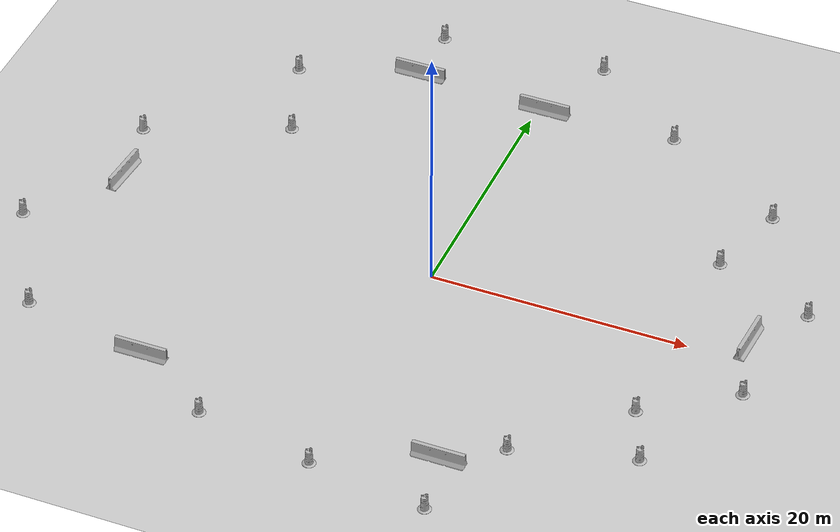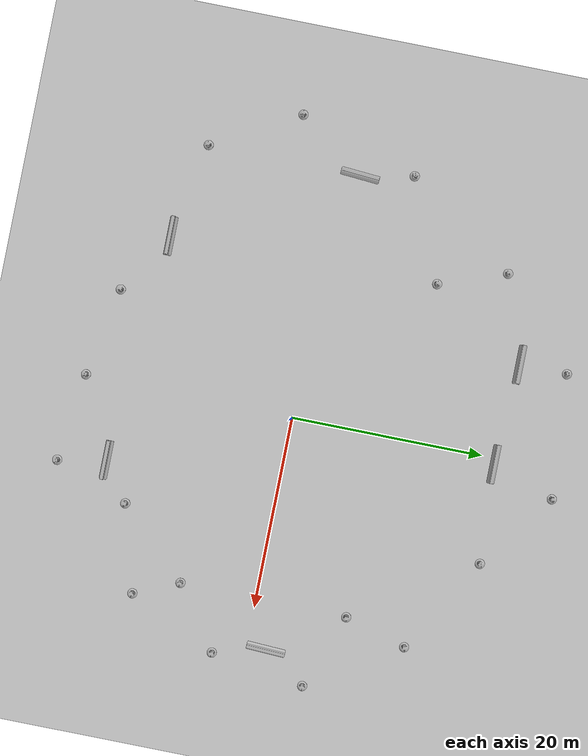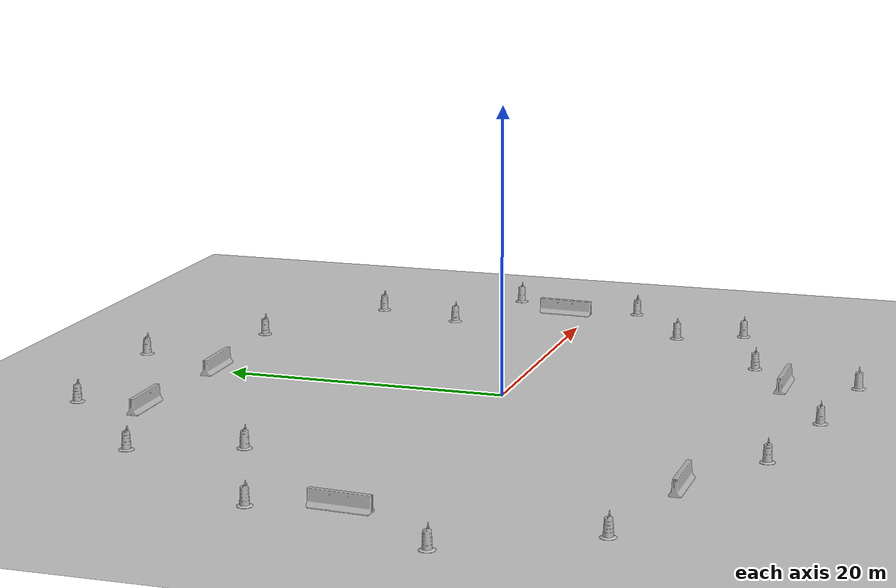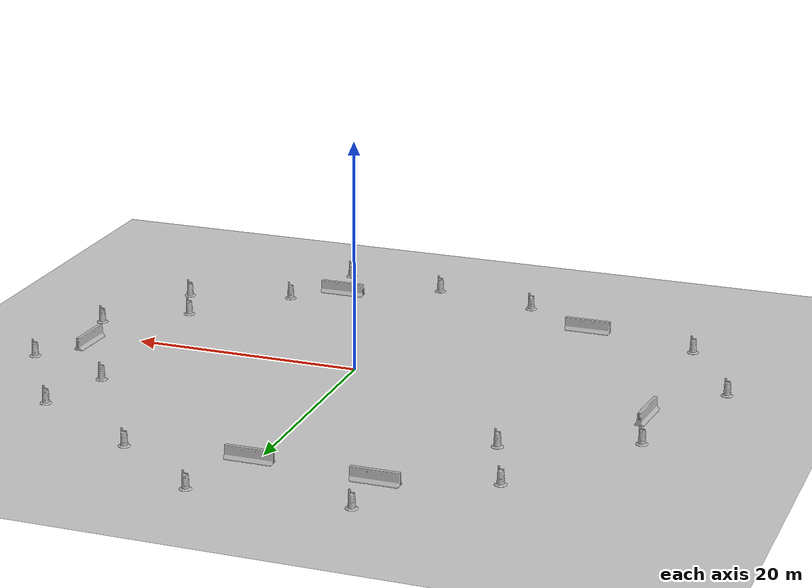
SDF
<sdf version="1.4">
 <world name="default">
  <light name="sun" type="directional">
   <pose>0 0 10 0 -0 0</pose>
   <diffuse>0.8 0.8 0.8 1</diffuse>
   <specular>0.2 0.2 0.2 1</specular>
   <attenuation>
    <range>1000</range>
    <constant>0.9</constant>
    <linear>0.01</linear>
    <quadratic>0.001</quadratic>
   </attenuation>
   <direction>-0.5 0.1 -0.9</direction>
  </light>
  <model name="ground_plane">
   <static>1</static>
   <link name="link">
    <collision name="collision">
     <geometry><plane><normal>0 0 1</normal><size>100 100</size></plane></geometry>
     <surface><friction><ode><mu>100</mu><mu2>50</mu2></ode></friction></surface>
    </collision>
    <visual name="visual">
     <cast_shadows>0</cast_shadows>
     <geometry><plane><normal>0 0 1</normal><size>100 100</size></plane></geometry>
     <material>
      <script><uri>file://media/materials/scripts/gazebo.material</uri><name>Gazebo/Grey</name></script>
     </material>
    </visual>
    <velocity_decay><linear>0</linear><angular>0</angular></velocity_decay>
   </link>
  </model>
  <physics type="ode">
   <max_step_size>0.001</max_step_size>
   <real_time_factor>1</real_time_factor>
   <real_time_update_rate>1000</real_time_update_rate>
   <gravity>0 0 -9.8</gravity>
  </physics>
  <scene><ambient>0.4 0.4 0.4 1</ambient><background>0.7 0.7 0.7 1</background><shadows>1</shadows></scene>
  <spherical_coordinates>
   <surface_model>EARTH_WGS84</surface_model>
   <latitude_deg>0</latitude_deg>
   <longitude_deg>0</longitude_deg>
   <elevation>0</elevation>
   <heading_deg>0</heading_deg>
  </spherical_coordinates>
  <model name="Construction Barrel">
   <link name="link">
    <inertial>
     <pose>0 0 0.4 0 -0 0</pose>
     <mass>500</mass>
     <inertia><ixx>51.2096</ixx><iyy>51.2096</iyy><izz>25</izz><ixy>0</ixy><ixz>0</ixz><iyz>0</iyz></inertia>
    </inertial>
    <collision name="collision">
     <geometry><mesh><uri>model://construction_barrel/meshes/construction_barrel.dae</uri></mesh></geometry>
    </collision>
    <visual name="visual">
     <geometry><mesh><uri>model://construction_barrel/meshes/construction_barrel.dae</uri></mesh></geometry>
    </visual>
    <velocity_decay><linear>0</linear><angular>0</angular></velocity_decay>
   </link>
   <pose>-0.250932 -21.8081 -2e-06 6e-06 2e-06 -0.002034</pose>
   <static>0</static>
  </model>
  <model name="Construction Barrel_0">
   <link name="link">
    <inertial>
     <pose>0 0 0.4 0 -0 0</pose>
     <mass>500</mass>
     <inertia><ixx>51.2096</ixx><iyy>51.2096</iyy><izz>25</izz><ixy>0</ixy><ixz>0</ixz><iyz>0</iyz></inertia>
    </inertial>
    <collision name="collision">
     <geometry><mesh><uri>model://construction_barrel/meshes/construction_barrel.dae</uri></mesh></geometry>
    </collision>
    <visual name="visual">
     <geometry><mesh><uri>model://construction_barrel/meshes/construction_barrel.dae</uri></mesh></geometry>
    </visual>
    <velocity_decay><linear>0</linear><angular>0</angular></velocity_decay>
   </link>
   <pose>12.0469 -15.2088 -3e-06 3e-06 -6e-06 -0.002048</pose>
   <static>0</static>
  </model>
  <model name="Construction Barrel_1">
   <link name="link">
    <inertial>
     <pose>0 0 0.4 0 -0 0</pose>
     <mass>500</mass>
     <inertia><ixx>51.2096</ixx><iyy>51.2096</iyy><izz>25</izz><ixy>0</ixy><ixz>0</ixz><iyz>0</iyz></inertia>
    </inertial>
    <collision name="collision">
     <geometry><mesh><uri>model://construction_barrel/meshes/construction_barrel.dae</uri></mesh></geometry>
    </collision>
    <visual name="visual">
     <geometry><mesh><uri>model://construction_barrel/meshes/construction_barrel.dae</uri></mesh></geometry>
    </visual>
    <velocity_decay><linear>0</linear><angular>0</angular></velocity_decay>
   </link>
   <pose>18.9999 -7.99888 1e-06 -1e-06 -2e-06 -0.002006</pose>
   <static>0</static>
  </model>
  <model name="Construction Barrel_2">
   <link name="link">
    <inertial>
     <pose>0 0 0.4 0 -0 0</pose>
     <mass>500</mass>
     <inertia><ixx>51.2096</ixx><iyy>51.2096</iyy><izz>25</izz><ixy>0</ixy><ixz>0</ixz><iyz>0</iyz></inertia>
    </inertial>
    <collision name="collision">
     <geometry><mesh><uri>model://construction_barrel/meshes/construction_barrel.dae</uri></mesh></geometry>
    </collision>
    <visual name="visual">
     <geometry><mesh><uri>model://construction_barrel/meshes/construction_barrel.dae</uri></mesh></geometry>
    </visual>
    <velocity_decay><linear>0</linear><angular>0</angular></velocity_decay>
   </link>
   <pose>-16.5172 12.0058 -4e-06 2e-06 -7e-06 -0.001926</pose>
   <static>0</static>
  </model>
  <model name="Construction Barrel_3">
   <link name="link">
    <inertial>
     <pose>0 0 0.4 0 -0 0</pose>
     <mass>500</mass>
     <inertia><ixx>51.2096</ixx><iyy>51.2096</iyy><izz>25</izz><ixy>0</ixy><ixz>0</ixz><iyz>0</iyz></inertia>
    </inertial>
    <collision name="collision">
     <geometry><mesh><uri>model://construction_barrel/meshes/construction_barrel.dae</uri></mesh></geometry>
    </collision>
    <visual name="visual">
     <geometry><mesh><uri>model://construction_barrel/meshes/construction_barrel.dae</uri></mesh></geometry>
    </visual>
    <velocity_decay><linear>0</linear><angular>0</angular></velocity_decay>
   </link>
   <pose>19.134 9.52298 -2e-06 -1e-06 -7e-06 -0.001846</pose>
   <static>0</static>
  </model>
  <model name="Construction Barrel_4">
   <link name="link">
    <inertial>
     <pose>0 0 0.4 0 -0 0</pose>
     <mass>500</mass>
     <inertia><ixx>51.2096</ixx><iyy>51.2096</iyy><izz>25</izz><ixy>0</ixy><ixz>0</ixz><iyz>0</iyz></inertia>
    </inertial>
    <collision name="collision">
     <geometry><mesh><uri>model://construction_barrel/meshes/construction_barrel.dae</uri></mesh></geometry>
    </collision>
    <visual name="visual">
     <geometry><mesh><uri>model://construction_barrel/meshes/construction_barrel.dae</uri></mesh></geometry>
    </visual>
    <velocity_decay><linear>0</linear><angular>0</angular></velocity_decay>
   </link>
   <pose>25.4331 -3.40512 -3e-06 3e-06 -6e-06 -0.001732</pose>
   <static>0</static>
  </model>
  <model name="Construction Barrel_5">
   <link name="link">
    <inertial>
     <pose>0 0 0.4 0 -0 0</pose>
     <mass>500</mass>
     <inertia><ixx>51.2096</ixx><iyy>51.2096</iyy><izz>25</izz><ixy>0</ixy><ixz>0</ixz><iyz>0</iyz></inertia>
    </inertial>
    <collision name="collision">
     <geometry><mesh><uri>model://construction_barrel/meshes/construction_barrel.dae</uri></mesh></geometry>
    </collision>
    <visual name="visual">
     <geometry><mesh><uri>model://construction_barrel/meshes/construction_barrel.dae</uri></mesh></geometry>
    </visual>
    <velocity_decay><linear>0</linear><angular>0</angular></velocity_decay>
   </link>
   <pose>-27.0001 7.54625 -3e-06 3e-06 -6e-06 -0.001679</pose>
   <static>0</static>
  </model>
  <model name="Construction Barrel_6">
   <link name="link">
    <inertial>
     <pose>0 0 0.4 0 -0 0</pose>
     <mass>500</mass>
     <inertia><ixx>51.2096</ixx><iyy>51.2096</iyy><izz>25</izz><ixy>0</ixy><ixz>0</ixz><iyz>0</iyz></inertia>
    </inertial>
    <collision name="collision">
     <geometry><mesh><uri>model://construction_barrel/meshes/construction_barrel.dae</uri></mesh></geometry>
    </collision>
    <visual name="visual">
     <geometry><mesh><uri>model://construction_barrel/meshes/construction_barrel.dae</uri></mesh></geometry>
    </visual>
    <velocity_decay><linear>0</linear><angular>0</angular></velocity_decay>
   </link>
   <pose>-10.0001 27.0009 -1e-06 -2e-06 8e-06 -0.001682</pose>
   <static>0</static>
  </model>
  <model name="Construction Barrel_7">
   <link name="link">
    <inertial>
     <pose>0 0 0.4 0 -0 0</pose>
     <mass>500</mass>
     <inertia><ixx>51.2096</ixx><iyy>51.2096</iyy><izz>25</izz><ixy>0</ixy><ixz>0</ixz><iyz>0</iyz></inertia>
    </inertial>
    <collision name="collision">
     <geometry><mesh><uri>model://construction_barrel/meshes/construction_barrel.dae</uri></mesh></geometry>
    </collision>
    <visual name="visual">
     <geometry><mesh><uri>model://construction_barrel/meshes/construction_barrel.dae</uri></mesh></geometry>
    </visual>
    <velocity_decay><linear>0</linear><angular>0</angular></velocity_decay>
   </link>
   <pose>-31.0001 -4.99911 -4e-06 5e-06 9e-06 -0.001599</pose>
   <static>0</static>
  </model>
  <model name="Construction Barrel_8">
   <link name="link">
    <inertial>
     <pose>0 0 0.4 0 -0 0</pose>
     <mass>500</mass>
     <inertia><ixx>51.2096</ixx><iyy>51.2096</iyy><izz>25</izz><ixy>0</ixy><ixz>0</ixz><iyz>0</iyz></inertia>
    </inertial>
    <collision name="collision">
     <geometry><mesh><uri>model://construction_barrel/meshes/construction_barrel.dae</uri></mesh></geometry>
    </collision>
    <visual name="visual">
     <geometry><mesh><uri>model://construction_barrel/meshes/construction_barrel.dae</uri></mesh></geometry>
    </visual>
    <velocity_decay><linear>0</linear><angular>0</angular></velocity_decay>
   </link>
   <pose>-9.5682 -19.9991 -0 0 -0 -0.001545</pose>
   <static>0</static>
  </model>
  <model name="Construction Barrel_9">
   <link name="link">
    <inertial>
     <pose>0 0 0.4 0 -0 0</pose>
     <mass>500</mass>
     <inertia><ixx>51.2096</ixx><iyy>51.2096</iyy><izz>25</izz><ixy>0</ixy><ixz>0</ixz><iyz>0</iyz></inertia>
    </inertial>
    <collision name="collision">
     <geometry><mesh><uri>model://construction_barrel/meshes/construction_barrel.dae</uri></mesh></geometry>
    </collision>
    <visual name="visual">
     <geometry><mesh><uri>model://construction_barrel/meshes/construction_barrel.dae</uri></mesh></geometry>
    </visual>
    <velocity_decay><linear>0</linear><angular>0</angular></velocity_decay>
   </link>
   <pose>-26.0001 -13.9992 -0 0 -0 -0.00146</pose>
   <static>0</static>
  </model>
  <model name="Construction Barrel_10">
   <link name="link">
    <inertial>
     <pose>0 0 0.4 0 -0 0</pose>
     <mass>500</mass>
     <inertia><ixx>51.2096</ixx><iyy>51.2096</iyy><izz>25</izz><ixy>0</ixy><ixz>0</ixz><iyz>0</iyz></inertia>
    </inertial>
    <collision name="collision">
     <geometry><mesh><uri>model://construction_barrel/meshes/construction_barrel.dae</uri></mesh></geometry>
    </collision>
    <visual name="visual">
     <geometry><mesh><uri>model://construction_barrel/meshes/construction_barrel.dae</uri></mesh></geometry>
    </visual>
    <velocity_decay><linear>0</linear><angular>0</angular></velocity_decay>
   </link>
   <pose>8.9999 -22.9992 -3e-06 -2e-06 9e-06 -0.001422</pose>
   <static>0</static>
  </model>
  <model name="Construction Barrel_11">
   <link name="link">
    <inertial>
     <pose>0 0 0.4 0 -0 0</pose>
     <mass>500</mass>
     <inertia><ixx>51.2096</ixx><iyy>51.2096</iyy><izz>25</izz><ixy>0</ixy><ixz>0</ixz><iyz>0</iyz></inertia>
    </inertial>
    <collision name="collision">
     <geometry><mesh><uri>model://construction_barrel/meshes/construction_barrel.dae</uri></mesh></geometry>
    </collision>
    <visual name="visual">
     <geometry><mesh><uri>model://construction_barrel/meshes/construction_barrel.dae</uri></mesh></geometry>
    </visual>
    <velocity_decay><linear>0</linear><angular>0</angular></velocity_decay>
   </link>
   <pose>10.9999 22.0007 1e-06 -1e-06 -2e-06 -0.001372</pose>
   <static>0</static>
  </model>
  <model name="Construction Barrel_12">
   <link name="link">
    <inertial>
     <pose>0 0 0.4 0 -0 0</pose>
     <mass>500</mass>
     <inertia><ixx>51.2096</ixx><iyy>51.2096</iyy><izz>25</izz><ixy>0</ixy><ixz>0</ixz><iyz>0</iyz></inertia>
    </inertial>
    <collision name="collision">
     <geometry><mesh><uri>model://construction_barrel/meshes/construction_barrel.dae</uri></mesh></geometry>
    </collision>
    <visual name="visual">
     <geometry><mesh><uri>model://construction_barrel/meshes/construction_barrel.dae</uri></mesh></geometry>
    </visual>
    <velocity_decay><linear>0</linear><angular>0</angular></velocity_decay>
   </link>
   <pose>26.9999 6.44798 1e-06 -1e-06 -2e-06 -0.001309</pose>
   <static>0</static>
  </model>
  <model name="Construction Barrel_13">
   <link name="link">
    <inertial>
     <pose>0 0 0.4 0 -0 0</pose>
     <mass>500</mass>
     <inertia><ixx>51.2096</ixx><iyy>51.2096</iyy><izz>25</izz><ixy>0</ixy><ixz>0</ixz><iyz>0</iyz></inertia>
    </inertial>
    <collision name="collision">
     <geometry><mesh><uri>model://construction_barrel/meshes/construction_barrel.dae</uri></mesh></geometry>
    </collision>
    <visual name="visual">
     <geometry><mesh><uri>model://construction_barrel/meshes/construction_barrel.dae</uri></mesh></geometry>
    </visual>
    <velocity_decay><linear>0</linear><angular>0</angular></velocity_decay>
   </link>
   <pose>21.031 -12.6723 1e-06 -1e-06 -2e-06 -0.001219</pose>
   <static>0</static>
  </model>
  <model name="Construction Barrel_14">
   <link name="link">
    <inertial>
     <pose>0 0 0.4 0 -0 0</pose>
     <mass>500</mass>
     <inertia><ixx>51.2096</ixx><iyy>51.2096</iyy><izz>25</izz><ixy>0</ixy><ixz>0</ixz><iyz>0</iyz></inertia>
    </inertial>
    <collision name="collision">
     <geometry><mesh><uri>model://construction_barrel/meshes/construction_barrel.dae</uri></mesh></geometry>
    </collision>
    <visual name="visual">
     <geometry><mesh><uri>model://construction_barrel/meshes/construction_barrel.dae</uri></mesh></geometry>
    </visual>
    <velocity_decay><linear>0</linear><angular>0</angular></velocity_decay>
   </link>
   <pose>-19 19.0006 1e-06 -1e-06 -2e-06 -0.001183</pose>
   <static>0</static>
  </model>
  <model name="Construction Barrel_15">
   <link name="link">
    <inertial>
     <pose>0 0 0.4 0 -0 0</pose>
     <mass>500</mass>
     <inertia><ixx>51.2096</ixx><iyy>51.2096</iyy><izz>25</izz><ixy>0</ixy><ixz>0</ixz><iyz>0</iyz></inertia>
    </inertial>
    <collision name="collision">
     <geometry><mesh><uri>model://construction_barrel/meshes/construction_barrel.dae</uri></mesh></geometry>
    </collision>
    <visual name="visual">
     <geometry><mesh><uri>model://construction_barrel/meshes/construction_barrel.dae</uri></mesh></geometry>
    </visual>
    <velocity_decay><linear>0</linear><angular>0</angular></velocity_decay>
   </link>
   <pose>21 16.0006 1e-06 -1e-06 -2e-06 -0.00112</pose>
   <static>0</static>
  </model>
  <model name="Construction Barrel_16">
   <link name="link">
    <inertial>
     <pose>0 0 0.4 0 -0 0</pose>
     <mass>500</mass>
     <inertia><ixx>51.2096</ixx><iyy>51.2096</iyy><izz>25</izz><ixy>0</ixy><ixz>0</ixz><iyz>0</iyz></inertia>
    </inertial>
    <collision name="collision">
     <geometry><mesh><uri>model://construction_barrel/meshes/construction_barrel.dae</uri></mesh></geometry>
    </collision>
    <visual name="visual">
     <geometry><mesh><uri>model://construction_barrel/meshes/construction_barrel.dae</uri></mesh></geometry>
    </visual>
    <velocity_decay><linear>0</linear><angular>0</angular></velocity_decay>
   </link>
   <pose>2.99993 28.0006 1e-06 -1e-06 -2e-06 -0.001057</pose>
   <static>0</static>
  </model>
  <model name="jersey_barrier">
   <static>1</static>
   <link name="link">
    <visual name="visual">
     <geometry><mesh><uri>model://jersey_barrier/meshes/jersey_barrier.dae</uri></mesh></geometry>
    </visual>
    <collision name="upright">
     <pose>0 0 0.5715 0 -0 0</pose>
     <geometry><box><size>4.06542 0.3063 1.143</size></box></geometry>
    </collision>
    <collision name="base">
     <pose>0 0 0.032258 0 -0 0</pose>
     <geometry><box><size>4.06542 0.8107 0.064516</size></box></geometry>
    </collision>
    <collision name="base2">
     <pose>0 0 0.1 0 -0 0</pose>
     <geometry><box><size>4.06542 0.65 0.1</size></box></geometry>
    </collision>
    <collision name="base3">
     <pose>0 0 0.2 0 -0 0</pose>
     <geometry><box><size>4.06542 0.5 0.1</size></box></geometry>
    </collision>
    <collision name="left-angle">
     <pose>0 -0.224 0.2401 0.9 -0 0</pose>
     <geometry><box><size>4.06542 0.5 0.064516</size></box></geometry>
    </collision>
    <collision name="right-angle">
     <pose>0 0.224 0.2401 -0.9 0 0</pose>
     <geometry><box><size>4.06542 0.5 0.064516</size></box></geometry>
    </collision>
    <velocity_decay><linear>0</linear><angular>0</angular></velocity_decay>
   </link>
   <pose>0.597215 21.4103 0 0 -0 0</pose>
  </model>
  <model name="jersey_barrier_0">
   <static>1</static>
   <link name="link">
    <visual name="visual">
     <geometry><mesh><uri>model://jersey_barrier/meshes/jersey_barrier.dae</uri></mesh></geometry>
    </visual>
    <collision name="upright">
     <pose>0 0 0.5715 0 -0 0</pose>
     <geometry><box><size>4.06542 0.3063 1.143</size></box></geometry>
    </collision>
    <collision name="base">
     <pose>0 0 0.032258 0 -0 0</pose>
     <geometry><box><size>4.06542 0.8107 0.064516</size></box></geometry>
    </collision>
    <collision name="base2">
     <pose>0 0 0.1 0 -0 0</pose>
     <geometry><box><size>4.06542 0.65 0.1</size></box></geometry>
    </collision>
    <collision name="base3">
     <pose>0 0 0.2 0 -0 0</pose>
     <geometry><box><size>4.06542 0.5 0.1</size></box></geometry>
    </collision>
    <collision name="left-angle">
     <pose>0 -0.224 0.2401 0.9 -0 0</pose>
     <geometry><box><size>4.06542 0.5 0.064516</size></box></geometry>
    </collision>
    <collision name="right-angle">
     <pose>0 0.224 0.2401 -0.9 0 0</pose>
     <geometry><box><size>4.06542 0.5 0.064516</size></box></geometry>
    </collision>
    <velocity_decay><linear>0</linear><angular>0</angular></velocity_decay>
   </link>
   <pose>-10 22 0 0 -0 0</pose>
  </model>
  <model name="jersey_barrier_1">
   <static>1</static>
   <link name="link">
    <visual name="visual">
     <geometry><mesh><uri>model://jersey_barrier/meshes/jersey_barrier.dae</uri></mesh></geometry>
    </visual>
    <collision name="upright">
     <pose>0 0 0.5715 0 -0 0</pose>
     <geometry><box><size>4.06542 0.3063 1.143</size></box></geometry>
    </collision>
    <collision name="base">
     <pose>0 0 0.032258 0 -0 0</pose>
     <geometry><box><size>4.06542 0.8107 0.064516</size></box></geometry>
    </collision>
    <collision name="base2">
     <pose>0 0 0.1 0 -0 0</pose>
     <geometry><box><size>4.06542 0.65 0.1</size></box></geometry>
    </collision>
    <collision name="base3">
     <pose>0 0 0.2 0 -0 0</pose>
     <geometry><box><size>4.06542 0.5 0.1</size></box></geometry>
    </collision>
    <collision name="left-angle">
     <pose>0 -0.224 0.2401 0.9 -0 0</pose>
     <geometry><box><size>4.06542 0.5 0.064516</size></box></geometry>
    </collision>
    <collision name="right-angle">
     <pose>0 0.224 0.2401 -0.9 0 0</pose>
     <geometry><box><size>4.06542 0.5 0.064516</size></box></geometry>
    </collision>
    <velocity_decay><linear>0</linear><angular>0</angular></velocity_decay>
   </link>
   <pose>-26 2 0 0 -0 1.49459</pose>
  </model>
  <model name="jersey_barrier_2">
   <static>1</static>
   <link name="link">
    <visual name="visual">
     <geometry><mesh><uri>model://jersey_barrier/meshes/jersey_barrier.dae</uri></mesh></geometry>
    </visual>
    <collision name="upright">
     <pose>0 0 0.5715 0 -0 0</pose>
     <geometry><box><size>4.06542 0.3063 1.143</size></box></geometry>
    </collision>
    <collision name="base">
     <pose>0 0 0.032258 0 -0 0</pose>
     <geometry><box><size>4.06542 0.8107 0.064516</size></box></geometry>
    </collision>
    <collision name="base2">
     <pose>0 0 0.1 0 -0 0</pose>
     <geometry><box><size>4.06542 0.65 0.1</size></box></geometry>
    </collision>
    <collision name="base3">
     <pose>0 0 0.2 0 -0 0</pose>
     <geometry><box><size>4.06542 0.5 0.1</size></box></geometry>
    </collision>
    <collision name="left-angle">
     <pose>0 -0.224 0.2401 0.9 -0 0</pose>
     <geometry><box><size>4.06542 0.5 0.064516</size></box></geometry>
    </collision>
    <collision name="right-angle">
     <pose>0 0.224 0.2401 -0.9 0 0</pose>
     <geometry><box><size>4.06542 0.5 0.064516</size></box></geometry>
    </collision>
    <velocity_decay><linear>0</linear><angular>0</angular></velocity_decay>
   </link>
   <pose>-16 -16 0 0 -0 0</pose>
  </model>
  <model name="jersey_barrier_3">
   <static>1</static>
   <link name="link">
    <visual name="visual">
     <geometry><mesh><uri>model://jersey_barrier/meshes/jersey_barrier.dae</uri></mesh></geometry>
    </visual>
    <collision name="upright">
     <pose>0 0 0.5715 0 -0 0</pose>
     <geometry><box><size>4.06542 0.3063 1.143</size></box></geometry>
    </collision>
    <collision name="base">
     <pose>0 0 0.032258 0 -0 0</pose>
     <geometry><box><size>4.06542 0.8107 0.064516</size></box></geometry>
    </collision>
    <collision name="base2">
     <pose>0 0 0.1 0 -0 0</pose>
     <geometry><box><size>4.06542 0.65 0.1</size></box></geometry>
    </collision>
    <collision name="base3">
     <pose>0 0 0.2 0 -0 0</pose>
     <geometry><box><size>4.06542 0.5 0.1</size></box></geometry>
    </collision>
    <collision name="left-angle">
     <pose>0 -0.224 0.2401 0.9 -0 0</pose>
     <geometry><box><size>4.06542 0.5 0.064516</size></box></geometry>
    </collision>
    <collision name="right-angle">
     <pose>0 0.224 0.2401 -0.9 0 0</pose>
     <geometry><box><size>4.06542 0.5 0.064516</size></box></geometry>
    </collision>
    <velocity_decay><linear>0</linear><angular>0</angular></velocity_decay>
   </link>
   <pose>8 -18 0 0 -0 0</pose>
  </model>
  <model name="jersey_barrier_4">
   <static>1</static>
   <link name="link">
    <visual name="visual">
     <geometry><mesh><uri>model://jersey_barrier/meshes/jersey_barrier.dae</uri></mesh></geometry>
    </visual>
    <collision name="upright">
     <pose>0 0 0.5715 0 -0 0</pose>
     <geometry><box><size>4.06542 0.3063 1.143</size></box></geometry>
    </collision>
    <collision name="base">
     <pose>0 0 0.032258 0 -0 0</pose>
     <geometry><box><size>4.06542 0.8107 0.064516</size></box></geometry>
    </collision>
    <collision name="base2">
     <pose>0 0 0.1 0 -0 0</pose>
     <geometry><box><size>4.06542 0.65 0.1</size></box></geometry>
    </collision>
    <collision name="base3">
     <pose>0 0 0.2 0 -0 0</pose>
     <geometry><box><size>4.06542 0.5 0.1</size></box></geometry>
    </collision>
    <collision name="left-angle">
     <pose>0 -0.224 0.2401 0.9 -0 0</pose>
     <geometry><box><size>4.06542 0.5 0.064516</size></box></geometry>
    </collision>
    <collision name="right-angle">
     <pose>0 0.224 0.2401 -0.9 0 0</pose>
     <geometry><box><size>4.06542 0.5 0.064516</size></box></geometry>
    </collision>
    <velocity_decay><linear>0</linear><angular>0</angular></velocity_decay>
   </link>
   <pose>24 2 0 0 -0 1.52298</pose>
  </model>
 </world>
</sdf>
